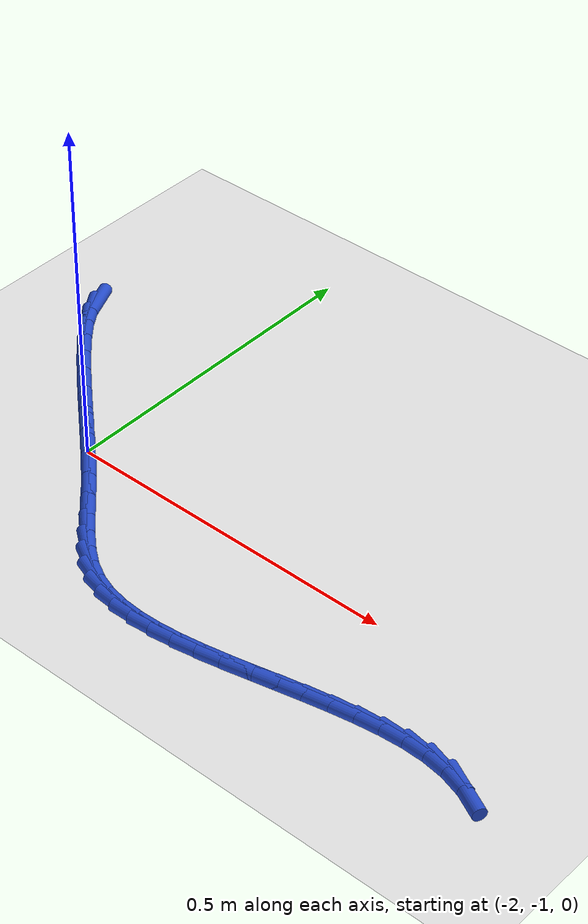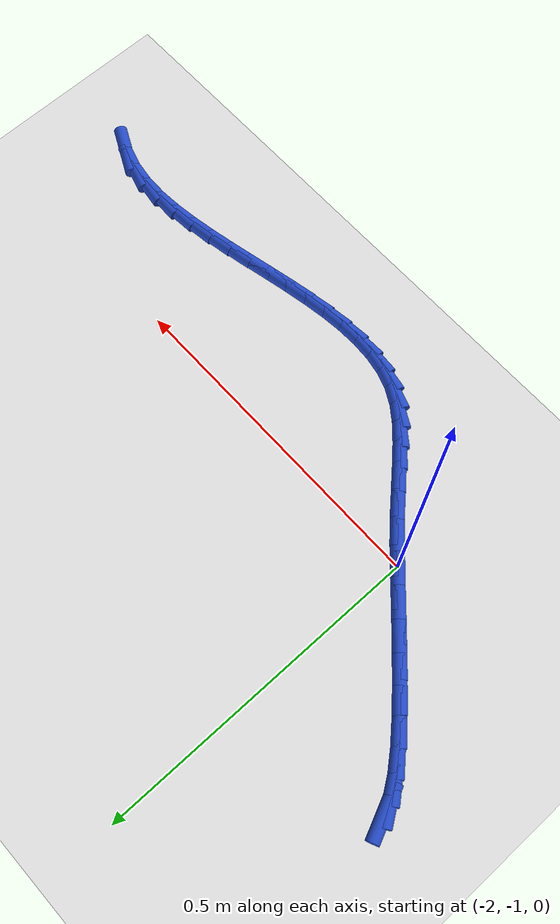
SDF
<sdf version="1.6">
 <world name="default">
  <model name="ground_plane">
   <static>1</static>
   <link name="link">
    <collision name="collision">
     <geometry><plane><normal>0 0 1</normal><size>100 100</size></plane></geometry>
     <surface><friction><ode><mu>100</mu><mu2>50</mu2></ode></friction></surface>
    </collision>
    <visual name="visual">
     <cast_shadows>0</cast_shadows>
     <geometry><plane><normal>0 0 1</normal><size>100 100</size></plane></geometry>
     <material>
      <script><uri>file://media/materials/scripts/gazebo.material</uri><name>Gazebo/WhiteGlow</name></script>
     </material>
    </visual>
   </link>
  </model>
  <model name="line">
   <link name="link_172">
    <pose>-2.217521971727342 -0.763053895605892 0.01 0 1.57 -1.158146336307717</pose>
    <collision name="collision">
     <geometry><cylinder><radius>0.01</radius><length>0.08</length></cylinder></geometry>
    </collision>
    <visual name="visual">
     <material>
      <script><name>Gazebo/Blue</name><uri>file://media/materials/scripts/gazebo.material</uri></script>
     </material>
     <geometry><cylinder><radius>0.01</radius><length>0.08</length></cylinder></geometry>
    </visual>
   </link>
   <link name="link_173">
    <pose>-2.2089315440601265 -0.7826763569288432 0.01 0 1.57 -0.9748553469378106</pose>
    <collision name="collision">
     <geometry><cylinder><radius>0.01</radius><length>0.08</length></cylinder></geometry>
    </collision>
    <visual name="visual">
     <material>
      <script><name>Gazebo/Blue</name><uri>file://media/materials/scripts/gazebo.material</uri></script>
     </material>
     <geometry><cylinder><radius>0.01</radius><length>0.08</length></cylinder></geometry>
    </visual>
   </link>
   <link name="link_174">
    <pose>-2.193330277905568 -0.80568047605186 0.01 0 1.57 -0.8771837069943028</pose>
    <collision name="collision">
     <geometry><cylinder><radius>0.01</radius><length>0.08</length></cylinder></geometry>
    </collision>
    <visual name="visual">
     <material>
      <script><name>Gazebo/Blue</name><uri>file://media/materials/scripts/gazebo.material</uri></script>
     </material>
     <geometry><cylinder><radius>0.01</radius><length>0.08</length></cylinder></geometry>
    </visual>
   </link>
   <link name="link_175">
    <pose>-2.1718499583908253 -0.8315159371760289 0.01 0 1.57 -0.8201423272979177</pose>
    <collision name="collision">
     <geometry><cylinder><radius>0.01</radius><length>0.08</length></cylinder></geometry>
    </collision>
    <visual name="visual">
     <material>
      <script><name>Gazebo/Blue</name><uri>file://media/materials/scripts/gazebo.material</uri></script>
     </material>
     <geometry><cylinder><radius>0.01</radius><length>0.08</length></cylinder></geometry>
    </visual>
   </link>
   <link name="link_176">
    <pose>-2.1456223706430553 -0.8596324245024397 0.01 0 1.57 -0.785467301570141</pose>
    <collision name="collision">
     <geometry><cylinder><radius>0.01</radius><length>0.08</length></cylinder></geometry>
    </collision>
    <visual name="visual">
     <material>
      <script><name>Gazebo/Blue</name><uri>file://media/materials/scripts/gazebo.material</uri></script>
     </material>
     <geometry><cylinder><radius>0.01</radius><length>0.08</length></cylinder></geometry>
    </visual>
   </link>
   <link name="link_177">
    <pose>-2.1157792997894203 -0.8894796222321787 0.01 0 1.57 -0.7648945325231422</pose>
    <collision name="collision">
     <geometry><cylinder><radius>0.01</radius><length>0.08</length></cylinder></geometry>
    </collision>
    <visual name="visual">
     <material>
      <script><name>Gazebo/Blue</name><uri>file://media/materials/scripts/gazebo.material</uri></script>
     </material>
     <geometry><cylinder><radius>0.01</radius><length>0.08</length></cylinder></geometry>
    </visual>
   </link>
   <link name="link_178">
    <pose>-2.083452530957077 -0.9205072145663362 0.01 0 1.57 -0.7544756179866061</pose>
    <collision name="collision">
     <geometry><cylinder><radius>0.01</radius><length>0.08</length></cylinder></geometry>
    </collision>
    <visual name="visual">
     <material>
      <script><name>Gazebo/Blue</name><uri>file://media/materials/scripts/gazebo.material</uri></script>
     </material>
     <geometry><cylinder><radius>0.01</radius><length>0.08</length></cylinder></geometry>
    </visual>
   </link>
   <link name="link_179">
    <pose>-2.0497738492731856 -0.9521648857059977 0.01 0 1.57 -0.7524804579097144</pose>
    <collision name="collision">
     <geometry><cylinder><radius>0.01</radius><length>0.08</length></cylinder></geometry>
    </collision>
    <visual name="visual">
     <material>
      <script><name>Gazebo/Blue</name><uri>file://media/materials/scripts/gazebo.material</uri></script>
     </material>
     <geometry><cylinder><radius>0.01</radius><length>0.08</length></cylinder></geometry>
    </visual>
   </link>
   <link name="link_180">
    <pose>-2.015875039864905 -0.9839023198522544 0.01 0 1.57 -0.7586315977317991</pose>
    <collision name="collision">
     <geometry><cylinder><radius>0.01</radius><length>0.08</length></cylinder></geometry>
    </collision>
    <visual name="visual">
     <material>
      <script><name>Gazebo/Blue</name><uri>file://media/materials/scripts/gazebo.material</uri></script>
     </material>
     <geometry><cylinder><radius>0.01</radius><length>0.08</length></cylinder></geometry>
    </visual>
   </link>
   <link name="link_181">
    <pose>-1.9828878878593945 -1.0151692012061917 0.01 0 1.57 -0.7739964695526643</pose>
    <collision name="collision">
     <geometry><cylinder><radius>0.01</radius><length>0.08</length></cylinder></geometry>
    </collision>
    <visual name="visual">
     <material>
      <script><name>Gazebo/Blue</name><uri>file://media/materials/scripts/gazebo.material</uri></script>
     </material>
     <geometry><cylinder><radius>0.01</radius><length>0.08</length></cylinder></geometry>
    </visual>
   </link>
   <link name="link_182">
    <pose>-1.9519441783838132 -1.0454152139688988 0.01 0 1.57 -0.7988227023792873</pose>
    <collision name="collision">
     <geometry><cylinder><radius>0.01</radius><length>0.08</length></cylinder></geometry>
    </collision>
    <visual name="visual">
     <material>
      <script><name>Gazebo/Blue</name><uri>file://media/materials/scripts/gazebo.material</uri></script>
     </material>
     <geometry><cylinder><radius>0.01</radius><length>0.08</length></cylinder></geometry>
    </visual>
   </link>
   <link name="link_183">
    <pose>-1.9240246645278563 -1.0740945874415315 0.01 0 1.57 -0.8121598899614815</pose>
    <collision name="collision">
     <geometry><cylinder><radius>0.01</radius><length>0.08</length></cylinder></geometry>
    </collision>
    <visual name="visual">
     <material>
      <script><name>Gazebo/Blue</name><uri>file://media/materials/scripts/gazebo.material</uri></script>
     </material>
     <geometry><cylinder><radius>0.01</radius><length>0.08</length></cylinder></geometry>
    </visual>
   </link>
   <link name="link_184">
    <pose>-1.898805709524315 -1.1007008047320848 0.01 0 1.57 -0.7966948808881045</pose>
    <collision name="collision">
     <geometry><cylinder><radius>0.01</radius><length>0.08</length></cylinder></geometry>
    </collision>
    <visual name="visual">
     <material>
      <script><name>Gazebo/Blue</name><uri>file://media/materials/scripts/gazebo.material</uri></script>
     </material>
     <geometry><cylinder><radius>0.01</radius><length>0.08</length></cylinder></geometry>
    </visual>
   </link>
   <link name="link_185">
    <pose>-1.8752963321001623 -1.1247474317575339 0.01 0 1.57 -0.7444272500950717</pose>
    <collision name="collision">
     <geometry><cylinder><radius>0.01</radius><length>0.08</length></cylinder></geometry>
    </collision>
    <visual name="visual">
     <material>
      <script><name>Gazebo/Blue</name><uri>file://media/materials/scripts/gazebo.material</uri></script>
     </material>
     <geometry><cylinder><radius>0.01</radius><length>0.08</length></cylinder></geometry>
    </visual>
   </link>
   <link name="link_186">
    <pose>-1.8525001621220212 -1.1457481966051437 0.01 0 1.57 -0.6478993035983247</pose>
    <collision name="collision">
     <geometry><cylinder><radius>0.01</radius><length>0.08</length></cylinder></geometry>
    </collision>
    <visual name="visual">
     <material>
      <script><name>Gazebo/Blue</name><uri>file://media/materials/scripts/gazebo.material</uri></script>
     </material>
     <geometry><cylinder><radius>0.01</radius><length>0.08</length></cylinder></geometry>
    </visual>
   </link>
   <link name="link_187">
    <pose>-1.8294208294565104 -1.163216827362181 0.01 0 1.57 -0.5045486593683717</pose>
    <collision name="collision">
     <geometry><cylinder><radius>0.01</radius><length>0.08</length></cylinder></geometry>
    </collision>
    <visual name="visual">
     <material>
      <script><name>Gazebo/Blue</name><uri>file://media/materials/scripts/gazebo.material</uri></script>
     </material>
     <geometry><cylinder><radius>0.01</radius><length>0.08</length></cylinder></geometry>
    </visual>
   </link>
   <link name="link_188">
    <pose>-1.8050629302645647 -1.1766678301068594 0.01 0 1.57 -0.3365039777643438</pose>
    <collision name="collision">
     <geometry><cylinder><radius>0.01</radius><length>0.08</length></cylinder></geometry>
    </collision>
    <visual name="visual">
     <material>
      <script><name>Gazebo/Blue</name><uri>file://media/materials/scripts/gazebo.material</uri></script>
     </material>
     <geometry><cylinder><radius>0.01</radius><length>0.08</length></cylinder></geometry>
    </visual>
   </link>
   <link name="link_189">
    <pose>-1.7787498372140866 -1.18587236692167 0.01 0 1.57 -0.18788014522038848</pose>
    <collision name="collision">
     <geometry><cylinder><radius>0.01</radius><length>0.08</length></cylinder></geometry>
    </collision>
    <visual name="visual">
     <material>
      <script><name>Gazebo/Blue</name><uri>file://media/materials/scripts/gazebo.material</uri></script>
     </material>
     <geometry><cylinder><radius>0.01</radius><length>0.08</length></cylinder></geometry>
    </visual>
   </link>
   <link name="link_190">
    <pose>-1.750582461216965 -1.1912276179754682 0.01 0 1.57 -0.06689655664889604</pose>
    <collision name="collision">
     <geometry><cylinder><radius>0.01</radius><length>0.08</length></cylinder></geometry>
    </collision>
    <visual name="visual">
     <material>
      <script><name>Gazebo/Blue</name><uri>file://media/materials/scripts/gazebo.material</uri></script>
     </material>
     <geometry><cylinder><radius>0.01</radius><length>0.08</length></cylinder></geometry>
    </visual>
   </link>
   <link name="link_191">
    <pose>-1.7207780276292917 -1.1932244114940933 0.01 0 1.57 0.027882484469853867</pose>
    <collision name="collision">
     <geometry><cylinder><radius>0.01</radius><length>0.08</length></cylinder></geometry>
    </collision>
    <visual name="visual">
     <material>
      <script><name>Gazebo/Blue</name><uri>file://media/materials/scripts/gazebo.material</uri></script>
     </material>
     <geometry><cylinder><radius>0.01</radius><length>0.08</length></cylinder></geometry>
    </visual>
   </link>
   <link name="link_192">
    <pose>-1.6895537618071634 -1.192353575703385 0.01 0 1.57 0.09981977789012833</pose>
    <collision name="collision">
     <geometry><cylinder><radius>0.01</radius><length>0.08</length></cylinder></geometry>
    </collision>
    <visual name="visual">
     <material>
      <script><name>Gazebo/Blue</name><uri>file://media/materials/scripts/gazebo.material</uri></script>
     </material>
     <geometry><cylinder><radius>0.01</radius><length>0.08</length></cylinder></geometry>
    </visual>
   </link>
   <link name="link_193">
    <pose>-1.6571268891066746 -1.1891059388291825 0.01 0 1.57 0.15245234975039812</pose>
    <collision name="collision">
     <geometry><cylinder><radius>0.01</radius><length>0.08</length></cylinder></geometry>
    </collision>
    <visual name="visual">
     <material>
      <script><name>Gazebo/Blue</name><uri>file://media/materials/scripts/gazebo.material</uri></script>
     </material>
     <geometry><cylinder><radius>0.01</radius><length>0.08</length></cylinder></geometry>
    </visual>
   </link>
   <link name="link_194">
    <pose>-1.6237146348839187 -1.1839723290973256 0.01 0 1.57 0.18873528159173175</pose>
    <collision name="collision">
     <geometry><cylinder><radius>0.01</radius><length>0.08</length></cylinder></geometry>
    </collision>
    <visual name="visual">
     <material>
      <script><name>Gazebo/Blue</name><uri>file://media/materials/scripts/gazebo.material</uri></script>
     </material>
     <geometry><cylinder><radius>0.01</radius><length>0.08</length></cylinder></geometry>
    </visual>
   </link>
   <link name="link_195">
    <pose>-1.5895342244949928 -1.1774435747336542 0.01 0 1.57 0.21083566747924362</pose>
    <collision name="collision">
     <geometry><cylinder><radius>0.01</radius><length>0.08</length></cylinder></geometry>
    </collision>
    <visual name="visual">
     <material>
      <script><name>Gazebo/Blue</name><uri>file://media/materials/scripts/gazebo.material</uri></script>
     </material>
     <geometry><cylinder><radius>0.01</radius><length>0.08</length></cylinder></geometry>
    </visual>
   </link>
   <link name="link_196">
    <pose>-1.5548028832959888 -1.1700105039640076 0.01 0 1.57 0.22014485460723196</pose>
    <collision name="collision">
     <geometry><cylinder><radius>0.01</radius><length>0.08</length></cylinder></geometry>
    </collision>
    <visual name="visual">
     <material>
      <script><name>Gazebo/Blue</name><uri>file://media/materials/scripts/gazebo.material</uri></script>
     </material>
     <geometry><cylinder><radius>0.01</radius><length>0.08</length></cylinder></geometry>
    </visual>
   </link>
   <link name="link_197">
    <pose>-1.5197378366430048 -1.1621639450142252 0.01 0 1.57 0.21734408143331352</pose>
    <collision name="collision">
     <geometry><cylinder><radius>0.01</radius><length>0.08</length></cylinder></geometry>
    </collision>
    <visual name="visual">
     <material>
      <script><name>Gazebo/Blue</name><uri>file://media/materials/scripts/gazebo.material</uri></script>
     </material>
     <geometry><cylinder><radius>0.01</radius><length>0.08</length></cylinder></geometry>
    </visual>
   </link>
   <link name="link_198">
    <pose>-1.4845563098921313 -1.1543947261101462 0.01 0 1.57 0.2024582031727148</pose>
    <collision name="collision">
     <geometry><cylinder><radius>0.01</radius><length>0.08</length></cylinder></geometry>
    </collision>
    <visual name="visual">
     <material>
      <script><name>Gazebo/Blue</name><uri>file://media/materials/scripts/gazebo.material</uri></script>
     </material>
     <geometry><cylinder><radius>0.01</radius><length>0.08</length></cylinder></geometry>
    </visual>
   </link>
   <link name="link_199">
    <pose>-1.4494755283994674 -1.1471936754776106 0.01 0 1.57 0.17487976204893563</pose>
    <collision name="collision">
     <geometry><cylinder><radius>0.01</radius><length>0.08</length></cylinder></geometry>
    </collision>
    <visual name="visual">
     <material>
      <script><name>Gazebo/Blue</name><uri>file://media/materials/scripts/gazebo.material</uri></script>
     </material>
     <geometry><cylinder><radius>0.01</radius><length>0.08</length></cylinder></geometry>
    </visual>
   </link>
   <link name="link_200">
    <pose>-1.4147127175211047 -1.141051621342458 0.01 0 1.57 0.133249490440009</pose>
    <collision name="collision">
     <geometry><cylinder><radius>0.01</radius><length>0.08</length></cylinder></geometry>
    </collision>
    <visual name="visual">
     <material>
      <script><name>Gazebo/Blue</name><uri>file://media/materials/scripts/gazebo.material</uri></script>
     </material>
     <geometry><cylinder><radius>0.01</radius><length>0.08</length></cylinder></geometry>
    </visual>
   </link>
   <link name="link_201">
    <pose>-1.3804833293296892 -1.1364633852465247 0.01 0 1.57 0.07054515550635268</pose>
    <collision name="collision">
     <geometry><cylinder><radius>0.01</radius><length>0.08</length></cylinder></geometry>
    </collision>
    <visual name="visual">
     <material>
      <script><name>Gazebo/Blue</name><uri>file://media/materials/scripts/gazebo.material</uri></script>
     </material>
     <geometry><cylinder><radius>0.01</radius><length>0.08</length></cylinder></geometry>
    </visual>
   </link>
   <link name="link_202">
    <pose>-1.3469279933180116 -1.1340922841884085 0.01 0 1.57 -0.02241384730173999</pose>
    <collision name="collision">
     <geometry><cylinder><radius>0.01</radius><length>0.08</length></cylinder></geometry>
    </collision>
    <visual name="visual">
     <material>
      <script><name>Gazebo/Blue</name><uri>file://media/materials/scripts/gazebo.material</uri></script>
     </material>
     <geometry><cylinder><radius>0.01</radius><length>0.08</length></cylinder></geometry>
    </visual>
   </link>
   <link name="link_203">
    <pose>-1.314086592450663 -1.1348285096252007 0.01 0 1.57 -0.1469249702300498</pose>
    <collision name="collision">
     <geometry><cylinder><radius>0.01</radius><length>0.08</length></cylinder></geometry>
    </collision>
    <visual name="visual">
     <material>
      <script><name>Gazebo/Blue</name><uri>file://media/materials/scripts/gazebo.material</uri></script>
     </material>
     <geometry><cylinder><radius>0.01</radius><length>0.08</length></cylinder></geometry>
    </visual>
   </link>
   <link name="link_204">
    <pose>-1.2819919073531438 -1.1395782470076643 0.01 0 1.57 -0.2994902320889234</pose>
    <collision name="collision">
     <geometry><cylinder><radius>0.01</radius><length>0.08</length></cylinder></geometry>
    </collision>
    <visual name="visual">
     <material>
      <script><name>Gazebo/Blue</name><uri>file://media/materials/scripts/gazebo.material</uri></script>
     </material>
     <geometry><cylinder><radius>0.01</radius><length>0.08</length></cylinder></geometry>
    </visual>
   </link>
   <link name="link_205">
    <pose>-1.2506767186509544 -1.1492476817865633 0.01 0 1.57 -0.4700228990524844</pose>
    <collision name="collision">
     <geometry><cylinder><radius>0.01</radius><length>0.08</length></cylinder></geometry>
    </collision>
    <visual name="visual">
     <material>
      <script><name>Gazebo/Blue</name><uri>file://media/materials/scripts/gazebo.material</uri></script>
     </material>
     <geometry><cylinder><radius>0.01</radius><length>0.08</length></cylinder></geometry>
    </visual>
   </link>
  </model>
 </world>
</sdf>
